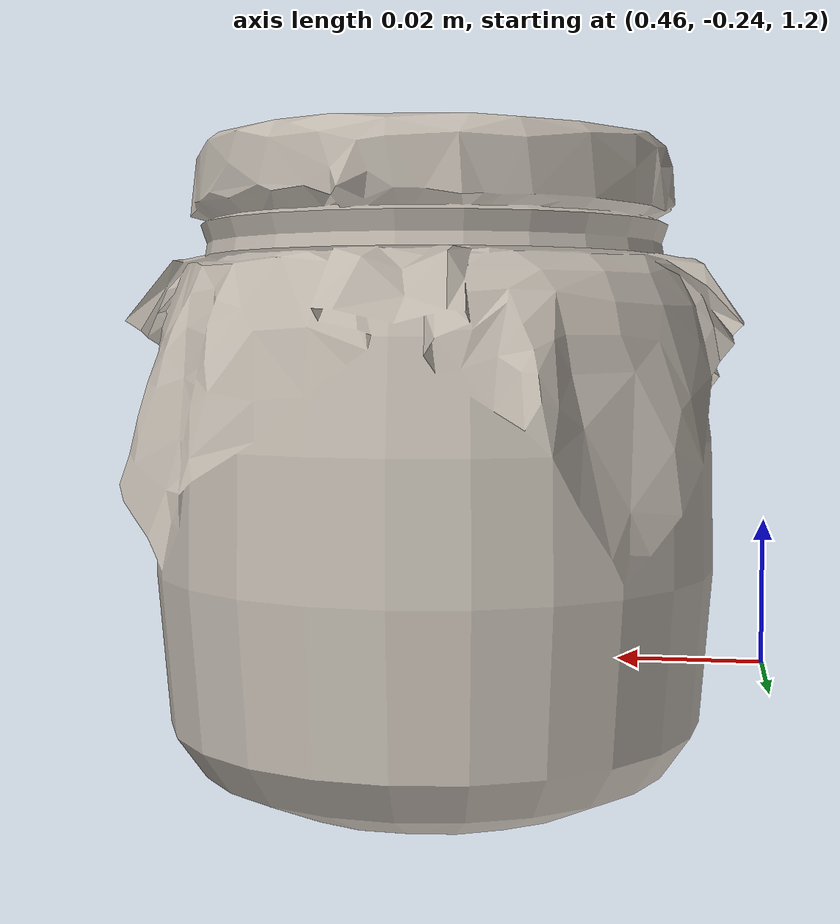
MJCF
<mujoco model="jam_0">
  <asset>
    <mesh file="../objects/bigym/jam_5/visual/model_normalized_0.obj" name="jam_5_model_normalized_0_vis" scale="0.07499999999999997 0.07499999999999997 0.07499999999999997" refquat="1.0 0.0 0.0 0.0"/>
    <mesh file="../objects/bigym/jam_5/visual/model_normalized_1.obj" name="jam_5_model_normalized_1_vis" scale="0.07499999999999997 0.07499999999999997 0.07499999999999997" refquat="1.0 0.0 0.0 0.0"/>
    <mesh file="../objects/bigym/jam_5/collision/model_normalized_collision_22.obj" name="jam_5_model_normalized_collision_22._coll" scale="0.07499999999999997 0.07499999999999997 0.07499999999999997" refquat="1.0 0.0 0.0 0.0"/>
    <mesh file="../objects/bigym/jam_5/collision/model_normalized_collision_23.obj" name="jam_5_model_normalized_collision_23._coll" scale="0.07499999999999997 0.07499999999999997 0.07499999999999997" refquat="1.0 0.0 0.0 0.0"/>
    <mesh file="../objects/bigym/jam_5/collision/model_normalized_collision_21.obj" name="jam_5_model_normalized_collision_21._coll" scale="0.07499999999999997 0.07499999999999997 0.07499999999999997" refquat="1.0 0.0 0.0 0.0"/>
    <mesh file="../objects/bigym/jam_5/collision/model_normalized_collision_20.obj" name="jam_5_model_normalized_collision_20._coll" scale="0.07499999999999997 0.07499999999999997 0.07499999999999997" refquat="1.0 0.0 0.0 0.0"/>
    <mesh file="../objects/bigym/jam_5/collision/model_normalized_collision_24.obj" name="jam_5_model_normalized_collision_24._coll" scale="0.07499999999999997 0.07499999999999997 0.07499999999999997" refquat="1.0 0.0 0.0 0.0"/>
    <mesh file="../objects/bigym/jam_5/collision/model_normalized_collision_30.obj" name="jam_5_model_normalized_collision_30._coll" scale="0.07499999999999997 0.07499999999999997 0.07499999999999997" refquat="1.0 0.0 0.0 0.0"/>
    <mesh file="../objects/bigym/jam_5/collision/model_normalized_collision_18.obj" name="jam_5_model_normalized_collision_18._coll" scale="0.07499999999999997 0.07499999999999997 0.07499999999999997" refquat="1.0 0.0 0.0 0.0"/>
    <mesh file="../objects/bigym/jam_5/collision/model_normalized_collision_19.obj" name="jam_5_model_normalized_collision_19._coll" scale="0.07499999999999997 0.07499999999999997 0.07499999999999997" refquat="1.0 0.0 0.0 0.0"/>
    <mesh file="../objects/bigym/jam_5/collision/model_normalized_collision_31.obj" name="jam_5_model_normalized_collision_31._coll" scale="0.07499999999999997 0.07499999999999997 0.07499999999999997" refquat="1.0 0.0 0.0 0.0"/>
    <mesh file="../objects/bigym/jam_5/collision/model_normalized_collision_25.obj" name="jam_5_model_normalized_collision_25._coll" scale="0.07499999999999997 0.07499999999999997 0.07499999999999997" refquat="1.0 0.0 0.0 0.0"/>
    <mesh file="../objects/bigym/jam_5/collision/model_normalized_collision_27.obj" name="jam_5_model_normalized_collision_27._coll" scale="0.07499999999999997 0.07499999999999997 0.07499999999999997" refquat="1.0 0.0 0.0 0.0"/>
    <mesh file="../objects/bigym/jam_5/collision/model_normalized_collision_26.obj" name="jam_5_model_normalized_collision_26._coll" scale="0.07499999999999997 0.07499999999999997 0.07499999999999997" refquat="1.0 0.0 0.0 0.0"/>
    <mesh file="../objects/bigym/jam_5/collision/model_normalized_collision_9.obj" name="jam_5_model_normalized_collision_9._coll" scale="0.07499999999999997 0.07499999999999997 0.07499999999999997" refquat="1.0 0.0 0.0 0.0"/>
    <mesh file="../objects/bigym/jam_5/collision/model_normalized_collision_8.obj" name="jam_5_model_normalized_collision_8._coll" scale="0.07499999999999997 0.07499999999999997 0.07499999999999997" refquat="1.0 0.0 0.0 0.0"/>
    <mesh file="../objects/bigym/jam_5/collision/model_normalized_collision_6.obj" name="jam_5_model_normalized_collision_6._coll" scale="0.07499999999999997 0.07499999999999997 0.07499999999999997" refquat="1.0 0.0 0.0 0.0"/>
    <mesh file="../objects/bigym/jam_5/collision/model_normalized_collision_7.obj" name="jam_5_model_normalized_collision_7._coll" scale="0.07499999999999997 0.07499999999999997 0.07499999999999997" refquat="1.0 0.0 0.0 0.0"/>
    <mesh file="../objects/bigym/jam_5/collision/model_normalized_collision_5.obj" name="jam_5_model_normalized_collision_5._coll" scale="0.07499999999999997 0.07499999999999997 0.07499999999999997" refquat="1.0 0.0 0.0 0.0"/>
    <mesh file="../objects/bigym/jam_5/collision/model_normalized_collision_4.obj" name="jam_5_model_normalized_collision_4._coll" scale="0.07499999999999997 0.07499999999999997 0.07499999999999997" refquat="1.0 0.0 0.0 0.0"/>
    <mesh file="../objects/bigym/jam_5/collision/model_normalized_collision_0.obj" name="jam_5_model_normalized_collision_0._coll" scale="0.07499999999999997 0.07499999999999997 0.07499999999999997" refquat="1.0 0.0 0.0 0.0"/>
    <mesh file="../objects/bigym/jam_5/collision/model_normalized_collision_1.obj" name="jam_5_model_normalized_collision_1._coll" scale="0.07499999999999997 0.07499999999999997 0.07499999999999997" refquat="1.0 0.0 0.0 0.0"/>
    <mesh file="../objects/bigym/jam_5/collision/model_normalized_collision_3.obj" name="jam_5_model_normalized_collision_3._coll" scale="0.07499999999999997 0.07499999999999997 0.07499999999999997" refquat="1.0 0.0 0.0 0.0"/>
    <mesh file="../objects/bigym/jam_5/collision/model_normalized_collision_2.obj" name="jam_5_model_normalized_collision_2._coll" scale="0.07499999999999997 0.07499999999999997 0.07499999999999997" refquat="1.0 0.0 0.0 0.0"/>
    <mesh file="../objects/bigym/jam_5/collision/model_normalized_collision_17.obj" name="jam_5_model_normalized_collision_17._coll" scale="0.07499999999999997 0.07499999999999997 0.07499999999999997" refquat="1.0 0.0 0.0 0.0"/>
    <mesh file="../objects/bigym/jam_5/collision/model_normalized_collision_16.obj" name="jam_5_model_normalized_collision_16._coll" scale="0.07499999999999997 0.07499999999999997 0.07499999999999997" refquat="1.0 0.0 0.0 0.0"/>
    <mesh file="../objects/bigym/jam_5/collision/model_normalized_collision_28.obj" name="jam_5_model_normalized_collision_28._coll" scale="0.07499999999999997 0.07499999999999997 0.07499999999999997" refquat="1.0 0.0 0.0 0.0"/>
    <mesh file="../objects/bigym/jam_5/collision/model_normalized_collision_14.obj" name="jam_5_model_normalized_collision_14._coll" scale="0.07499999999999997 0.07499999999999997 0.07499999999999997" refquat="1.0 0.0 0.0 0.0"/>
    <mesh file="../objects/bigym/jam_5/collision/model_normalized_collision_15.obj" name="jam_5_model_normalized_collision_15._coll" scale="0.07499999999999997 0.07499999999999997 0.07499999999999997" refquat="1.0 0.0 0.0 0.0"/>
    <mesh file="../objects/bigym/jam_5/collision/model_normalized_collision_29.obj" name="jam_5_model_normalized_collision_29._coll" scale="0.07499999999999997 0.07499999999999997 0.07499999999999997" refquat="1.0 0.0 0.0 0.0"/>
    <mesh file="../objects/bigym/jam_5/collision/model_normalized_collision_11.obj" name="jam_5_model_normalized_collision_11._coll" scale="0.07499999999999997 0.07499999999999997 0.07499999999999997" refquat="1.0 0.0 0.0 0.0"/>
    <mesh file="../objects/bigym/jam_5/collision/model_normalized_collision_10.obj" name="jam_5_model_normalized_collision_10._coll" scale="0.07499999999999997 0.07499999999999997 0.07499999999999997" refquat="1.0 0.0 0.0 0.0"/>
    <mesh file="../objects/bigym/jam_5/collision/model_normalized_collision_12.obj" name="jam_5_model_normalized_collision_12._coll" scale="0.07499999999999997 0.07499999999999997 0.07499999999999997" refquat="1.0 0.0 0.0 0.0"/>
    <mesh file="../objects/bigym/jam_5/collision/model_normalized_collision_13.obj" name="jam_5_model_normalized_collision_13._coll" scale="0.07499999999999997 0.07499999999999997 0.07499999999999997" refquat="1.0 0.0 0.0 0.0"/>
    <texture type="2d" name="jam_5_image0" file="../objects/bigym/jam_5/visual/image0.png"/>
    <texture type="2d" name="jam_5_image3" file="../objects/bigym/jam_5/visual/image3.png"/>
    <material name="jam_5_Glass" texture="jam_5_image0" specular="0.5" shininess="0.25"/>
    <material name="jam_5_recheio" texture="jam_5_image3" specular="0.5" shininess="0.25"/>
  </asset>
  <worldbody>
    <body pos="0.5 -0.2 1.23">
      <freejoint/>
      <body name="jam_5_object">
        <geom solimp="0.998 0.998 0.001" solref="0.001 1" density="100" friction="0.95 0.3 0.1" type="mesh" mesh="jam_5_model_normalized_0_vis" conaffinity="0" contype="0" group="1" material="jam_5_Glass"/>
        <geom solimp="0.998 0.998 0.001" solref="0.001 1" density="100" friction="0.95 0.3 0.1" type="mesh" mesh="jam_5_model_normalized_1_vis" conaffinity="0" contype="0" group="1" material="jam_5_recheio"/>
        <geom condim="4" solimp="0.998 0.998 0.001" solref="0.001 1" density="100" friction="0.95 0.3 0.1" type="mesh" mesh="jam_5_model_normalized_collision_22._coll" group="0" rgba="0.8 0.8 0.8 0.0"/>
        <geom condim="4" solimp="0.998 0.998 0.001" solref="0.001 1" density="100" friction="0.95 0.3 0.1" type="mesh" mesh="jam_5_model_normalized_collision_23._coll" group="0" rgba="0.8 0.8 0.8 0.0"/>
        <geom condim="4" solimp="0.998 0.998 0.001" solref="0.001 1" density="100" friction="0.95 0.3 0.1" type="mesh" mesh="jam_5_model_normalized_collision_21._coll" group="0" rgba="0.8 0.8 0.8 0.0"/>
        <geom condim="4" solimp="0.998 0.998 0.001" solref="0.001 1" density="100" friction="0.95 0.3 0.1" type="mesh" mesh="jam_5_model_normalized_collision_20._coll" group="0" rgba="0.8 0.8 0.8 0.0"/>
        <geom condim="4" solimp="0.998 0.998 0.001" solref="0.001 1" density="100" friction="0.95 0.3 0.1" type="mesh" mesh="jam_5_model_normalized_collision_24._coll" group="0" rgba="0.8 0.8 0.8 0.0"/>
        <geom condim="4" solimp="0.998 0.998 0.001" solref="0.001 1" density="100" friction="0.95 0.3 0.1" type="mesh" mesh="jam_5_model_normalized_collision_30._coll" group="0" rgba="0.8 0.8 0.8 0.0"/>
        <geom condim="4" solimp="0.998 0.998 0.001" solref="0.001 1" density="100" friction="0.95 0.3 0.1" type="mesh" mesh="jam_5_model_normalized_collision_18._coll" group="0" rgba="0.8 0.8 0.8 0.0"/>
        <geom condim="4" solimp="0.998 0.998 0.001" solref="0.001 1" density="100" friction="0.95 0.3 0.1" type="mesh" mesh="jam_5_model_normalized_collision_19._coll" group="0" rgba="0.8 0.8 0.8 0.0"/>
        <geom condim="4" solimp="0.998 0.998 0.001" solref="0.001 1" density="100" friction="0.95 0.3 0.1" type="mesh" mesh="jam_5_model_normalized_collision_31._coll" group="0" rgba="0.8 0.8 0.8 0.0"/>
        <geom condim="4" solimp="0.998 0.998 0.001" solref="0.001 1" density="100" friction="0.95 0.3 0.1" type="mesh" mesh="jam_5_model_normalized_collision_25._coll" group="0" rgba="0.8 0.8 0.8 0.0"/>
        <geom condim="4" solimp="0.998 0.998 0.001" solref="0.001 1" density="100" friction="0.95 0.3 0.1" type="mesh" mesh="jam_5_model_normalized_collision_27._coll" group="0" rgba="0.8 0.8 0.8 0.0"/>
        <geom condim="4" solimp="0.998 0.998 0.001" solref="0.001 1" density="100" friction="0.95 0.3 0.1" type="mesh" mesh="jam_5_model_normalized_collision_26._coll" group="0" rgba="0.8 0.8 0.8 0.0"/>
        <geom condim="4" solimp="0.998 0.998 0.001" solref="0.001 1" density="100" friction="0.95 0.3 0.1" type="mesh" mesh="jam_5_model_normalized_collision_9._coll" group="0" rgba="0.8 0.8 0.8 0.0"/>
        <geom condim="4" solimp="0.998 0.998 0.001" solref="0.001 1" density="100" friction="0.95 0.3 0.1" type="mesh" mesh="jam_5_model_normalized_collision_8._coll" group="0" rgba="0.8 0.8 0.8 0.0"/>
        <geom condim="4" solimp="0.998 0.998 0.001" solref="0.001 1" density="100" friction="0.95 0.3 0.1" type="mesh" mesh="jam_5_model_normalized_collision_6._coll" group="0" rgba="0.8 0.8 0.8 0.0"/>
        <geom condim="4" solimp="0.998 0.998 0.001" solref="0.001 1" density="100" friction="0.95 0.3 0.1" type="mesh" mesh="jam_5_model_normalized_collision_7._coll" group="0" rgba="0.8 0.8 0.8 0.0"/>
        <geom condim="4" solimp="0.998 0.998 0.001" solref="0.001 1" density="100" friction="0.95 0.3 0.1" type="mesh" mesh="jam_5_model_normalized_collision_5._coll" group="0" rgba="0.8 0.8 0.8 0.0"/>
        <geom condim="4" solimp="0.998 0.998 0.001" solref="0.001 1" density="100" friction="0.95 0.3 0.1" type="mesh" mesh="jam_5_model_normalized_collision_4._coll" group="0" rgba="0.8 0.8 0.8 0.0"/>
        <geom condim="4" solimp="0.998 0.998 0.001" solref="0.001 1" density="100" friction="0.95 0.3 0.1" type="mesh" mesh="jam_5_model_normalized_collision_0._coll" group="0" rgba="0.8 0.8 0.8 0.0"/>
        <geom condim="4" solimp="0.998 0.998 0.001" solref="0.001 1" density="100" friction="0.95 0.3 0.1" type="mesh" mesh="jam_5_model_normalized_collision_1._coll" group="0" rgba="0.8 0.8 0.8 0.0"/>
        <geom condim="4" solimp="0.998 0.998 0.001" solref="0.001 1" density="100" friction="0.95 0.3 0.1" type="mesh" mesh="jam_5_model_normalized_collision_3._coll" group="0" rgba="0.8 0.8 0.8 0.0"/>
        <geom condim="4" solimp="0.998 0.998 0.001" solref="0.001 1" density="100" friction="0.95 0.3 0.1" type="mesh" mesh="jam_5_model_normalized_collision_2._coll" group="0" rgba="0.8 0.8 0.8 0.0"/>
        <geom condim="4" solimp="0.998 0.998 0.001" solref="0.001 1" density="100" friction="0.95 0.3 0.1" type="mesh" mesh="jam_5_model_normalized_collision_17._coll" group="0" rgba="0.8 0.8 0.8 0.0"/>
        <geom condim="4" solimp="0.998 0.998 0.001" solref="0.001 1" density="100" friction="0.95 0.3 0.1" type="mesh" mesh="jam_5_model_normalized_collision_16._coll" group="0" rgba="0.8 0.8 0.8 0.0"/>
        <geom condim="4" solimp="0.998 0.998 0.001" solref="0.001 1" density="100" friction="0.95 0.3 0.1" type="mesh" mesh="jam_5_model_normalized_collision_28._coll" group="0" rgba="0.8 0.8 0.8 0.0"/>
        <geom condim="4" solimp="0.998 0.998 0.001" solref="0.001 1" density="100" friction="0.95 0.3 0.1" type="mesh" mesh="jam_5_model_normalized_collision_14._coll" group="0" rgba="0.8 0.8 0.8 0.0"/>
        <geom condim="4" solimp="0.998 0.998 0.001" solref="0.001 1" density="100" friction="0.95 0.3 0.1" type="mesh" mesh="jam_5_model_normalized_collision_15._coll" group="0" rgba="0.8 0.8 0.8 0.0"/>
        <geom condim="4" solimp="0.998 0.998 0.001" solref="0.001 1" density="100" friction="0.95 0.3 0.1" type="mesh" mesh="jam_5_model_normalized_collision_29._coll" group="0" rgba="0.8 0.8 0.8 0.0"/>
        <geom condim="4" solimp="0.998 0.998 0.001" solref="0.001 1" density="100" friction="0.95 0.3 0.1" type="mesh" mesh="jam_5_model_normalized_collision_11._coll" group="0" rgba="0.8 0.8 0.8 0.0"/>
        <geom condim="4" solimp="0.998 0.998 0.001" solref="0.001 1" density="100" friction="0.95 0.3 0.1" type="mesh" mesh="jam_5_model_normalized_collision_10._coll" group="0" rgba="0.8 0.8 0.8 0.0"/>
        <geom condim="4" solimp="0.998 0.998 0.001" solref="0.001 1" density="100" friction="0.95 0.3 0.1" type="mesh" mesh="jam_5_model_normalized_collision_12._coll" group="0" rgba="0.8 0.8 0.8 0.0"/>
        <geom condim="4" solimp="0.998 0.998 0.001" solref="0.001 1" density="100" friction="0.95 0.3 0.1" type="mesh" mesh="jam_5_model_normalized_collision_13._coll" group="0" rgba="0.8 0.8 0.8 0.0"/>
      </body>
      <site rgba="0 0 0 0" size="0.005" pos="-8.647087500000118e-05 5.647612499999966e-05 -0.03705395324999999" />
      <site rgba="0 0 0 0" size="0.005" pos="-8.647087500000118e-05 5.647612499999966e-05 0.037147766249999985" />
      <site rgba="0 0 0 0" size="0.005" pos="0.03483686549999999 0.03443189024999999 4.6906499999999054e-05" />
    </body>
  </worldbody>
</mujoco>
